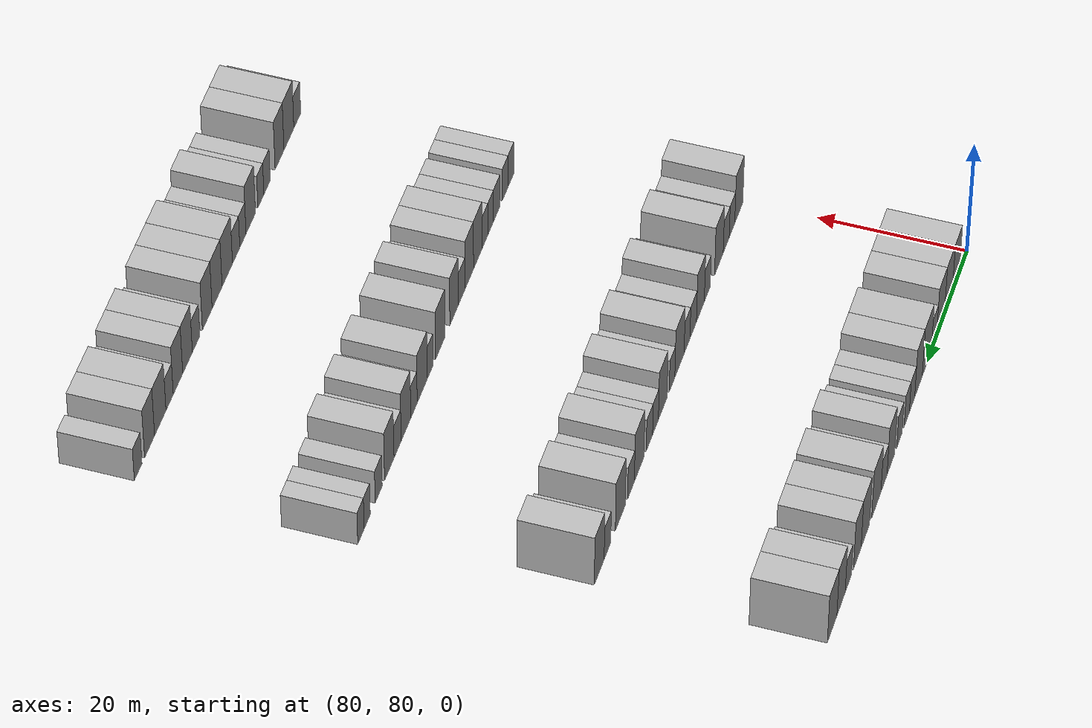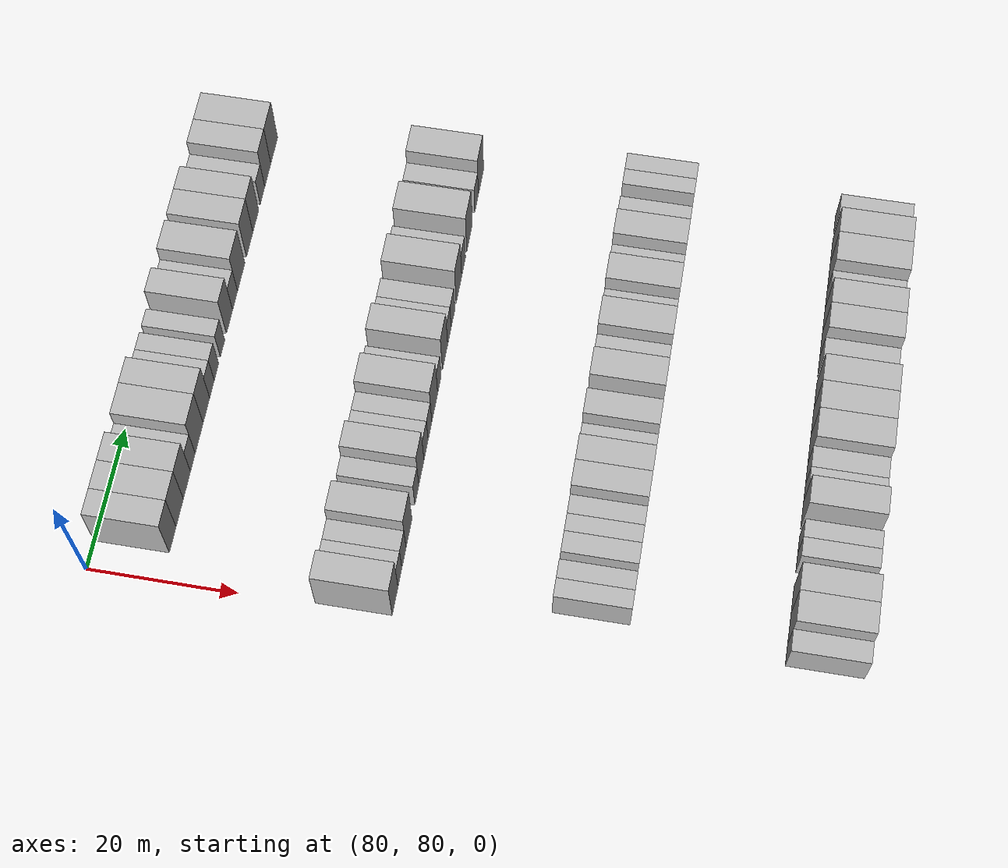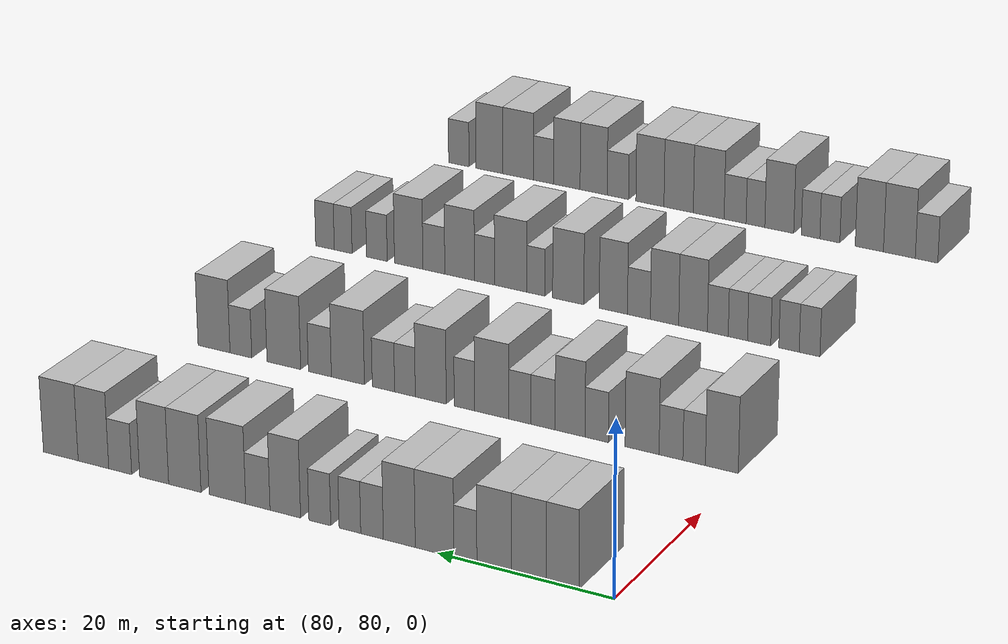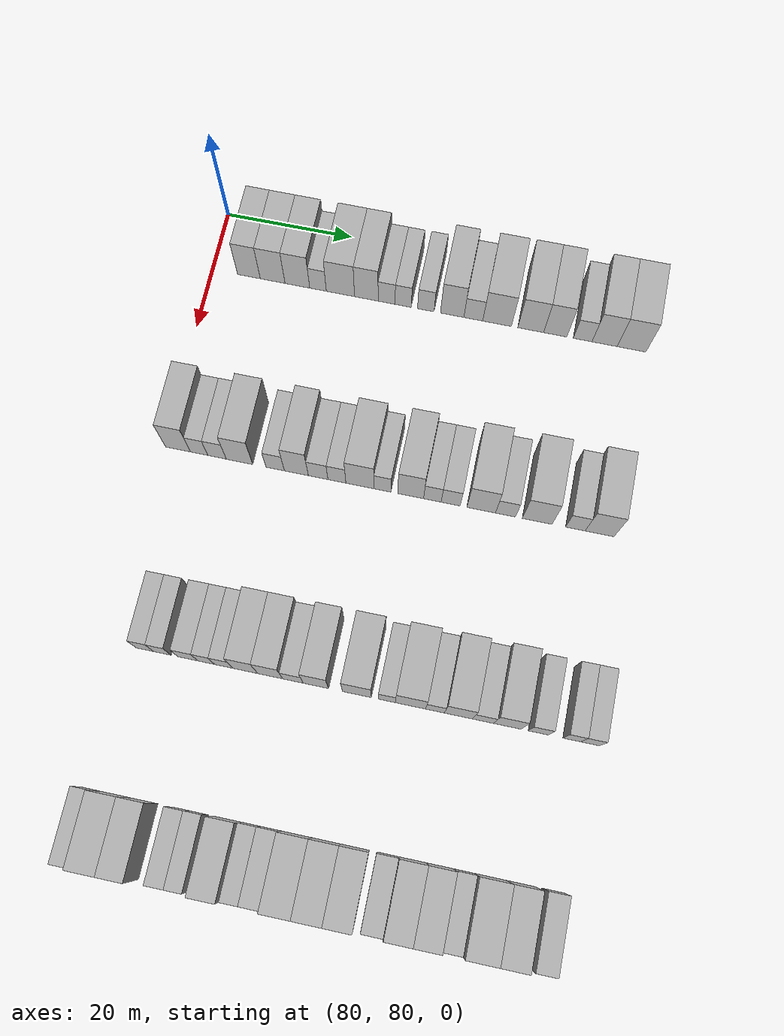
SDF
<sdf version="1.6">
 <world name="default">
  <model name="building_581">
   <static>1</static>
   <pose>85.0000 85.7623 0 0.000000 0.000000 0.000000</pose>
   <link name="link">
    <pose>0 0 4.50 0 0 0</pose>
    <collision name="collision"><geometry><box><size>10.0000 3.6317 9.0000</size></box></geometry></collision>
    <visual name="visual">
     <cast_shadows>0</cast_shadows>
     <geometry><box><size>10.0000 3.6317 9.0000</size></box></geometry>
     <material>
      <script>
       <uri>model://HANNAS_wall/materials/scripts</uri>
       <uri>model://HANNAS_wall/materials/textures</uri>
       <name>vrc/HANNAS_wall</name>
      </script>
     </material>
    </visual>
   </link>
  </model>
  <model name="building_582">
   <static>1</static>
   <pose>85.0000 89.5626 0 0.000000 0.000000 0.000000</pose>
   <link name="link">
    <pose>0 0 4.50 0 0 0</pose>
    <collision name="collision"><geometry><box><size>10.0000 3.9690 9.0000</size></box></geometry></collision>
    <visual name="visual">
     <cast_shadows>0</cast_shadows>
     <geometry><box><size>10.0000 3.9690 9.0000</size></box></geometry>
     <material>
      <script>
       <uri>model://HANNAS_wall/materials/scripts</uri>
       <uri>model://HANNAS_wall/materials/textures</uri>
       <name>vrc/HANNAS_wall</name>
      </script>
     </material>
    </visual>
   </link>
  </model>
  <model name="building_583">
   <static>1</static>
   <pose>85.0000 93.5191 0 0.000000 0.000000 0.000000</pose>
   <link name="link">
    <pose>0 0 4.50 0 0 0</pose>
    <collision name="collision"><geometry><box><size>10.0000 3.9439 9.0000</size></box></geometry></collision>
    <visual name="visual">
     <cast_shadows>0</cast_shadows>
     <geometry><box><size>10.0000 3.9439 9.0000</size></box></geometry>
     <material>
      <script>
       <uri>model://HANNAS_wall/materials/scripts</uri>
       <uri>model://HANNAS_wall/materials/textures</uri>
       <name>vrc/HANNAS_wall</name>
      </script>
     </material>
    </visual>
   </link>
  </model>
  <model name="building_584">
   <static>1</static>
   <pose>85.0000 96.8110 0 0.000000 0.000000 0.000000</pose>
   <link name="link">
    <pose>0 0 3.00 0 0 0</pose>
    <collision name="collision"><geometry><box><size>10.0000 2.6399 6.0000</size></box></geometry></collision>
    <visual name="visual">
     <cast_shadows>0</cast_shadows>
     <geometry><box><size>10.0000 2.6399 6.0000</size></box></geometry>
     <material>
      <script>
       <uri>model://HANNAS_wall/materials/scripts</uri>
       <uri>model://HANNAS_wall/materials/textures</uri>
       <name>vrc/HANNAS_wall</name>
      </script>
     </material>
    </visual>
   </link>
  </model>
  <model name="building_585">
   <static>1</static>
   <pose>85.0000 100.3733 0 0.000000 0.000000 0.000000</pose>
   <link name="link">
    <pose>0 0 4.50 0 0 0</pose>
    <collision name="collision"><geometry><box><size>10.0000 4.4847 9.0000</size></box></geometry></collision>
    <visual name="visual">
     <cast_shadows>0</cast_shadows>
     <geometry><box><size>10.0000 4.4847 9.0000</size></box></geometry>
     <material>
      <script>
       <uri>model://HANNAS_wall/materials/scripts</uri>
       <uri>model://HANNAS_wall/materials/textures</uri>
       <name>vrc/HANNAS_wall</name>
      </script>
     </material>
    </visual>
   </link>
  </model>
  <model name="building_586">
   <static>1</static>
   <pose>85.0000 104.4873 0 0.000000 0.000000 0.000000</pose>
   <link name="link">
    <pose>0 0 4.50 0 0 0</pose>
    <collision name="collision"><geometry><box><size>10.0000 3.7434 9.0000</size></box></geometry></collision>
    <visual name="visual">
     <cast_shadows>0</cast_shadows>
     <geometry><box><size>10.0000 3.7434 9.0000</size></box></geometry>
     <material>
      <script>
       <uri>model://HANNAS_wall/materials/scripts</uri>
       <uri>model://HANNAS_wall/materials/textures</uri>
       <name>vrc/HANNAS_wall</name>
      </script>
     </material>
    </visual>
   </link>
  </model>
  <model name="building_587">
   <static>1</static>
   <pose>85.0000 107.6906 0 0.000000 0.000000 0.000000</pose>
   <link name="link">
    <pose>0 0 3.00 0 0 0</pose>
    <collision name="collision"><geometry><box><size>10.0000 2.6631 6.0000</size></box></geometry></collision>
    <visual name="visual">
     <cast_shadows>0</cast_shadows>
     <geometry><box><size>10.0000 2.6631 6.0000</size></box></geometry>
     <material>
      <script>
       <uri>model://HANNAS_wall/materials/scripts</uri>
       <uri>model://HANNAS_wall/materials/textures</uri>
       <name>vrc/HANNAS_wall</name>
      </script>
     </material>
    </visual>
   </link>
  </model>
  <model name="building_588">
   <static>1</static>
   <pose>85.0000 110.3034 0 0.000000 0.000000 0.000000</pose>
   <link name="link">
    <pose>0 0 3.00 0 0 0</pose>
    <collision name="collision"><geometry><box><size>10.0000 2.5625 6.0000</size></box></geometry></collision>
    <visual name="visual">
     <cast_shadows>0</cast_shadows>
     <geometry><box><size>10.0000 2.5625 6.0000</size></box></geometry>
     <material>
      <script>
       <uri>model://HANNAS_wall/materials/scripts</uri>
       <uri>model://HANNAS_wall/materials/textures</uri>
       <name>vrc/HANNAS_wall</name>
      </script>
     </material>
    </visual>
   </link>
  </model>
  <model name="building_589">
   <static>1</static>
   <pose>85.0000 113.8896 0 0.000000 0.000000 0.000000</pose>
   <link name="link">
    <pose>0 0 3.00 0 0 0</pose>
    <collision name="collision"><geometry><box><size>10.0000 2.6100 6.0000</size></box></geometry></collision>
    <visual name="visual">
     <cast_shadows>0</cast_shadows>
     <geometry><box><size>10.0000 2.6100 6.0000</size></box></geometry>
     <material>
      <script>
       <uri>model://HANNAS_wall/materials/scripts</uri>
       <uri>model://HANNAS_wall/materials/textures</uri>
       <name>vrc/HANNAS_wall</name>
      </script>
     </material>
    </visual>
   </link>
  </model>
  <model name="building_590">
   <static>1</static>
   <pose>85.0000 118.0367 0 0.000000 0.000000 0.000000</pose>
   <link name="link">
    <pose>0 0 4.50 0 0 0</pose>
    <collision name="collision"><geometry><box><size>10.0000 3.6842 9.0000</size></box></geometry></collision>
    <visual name="visual">
     <cast_shadows>0</cast_shadows>
     <geometry><box><size>10.0000 3.6842 9.0000</size></box></geometry>
     <material>
      <script>
       <uri>model://HANNAS_wall/materials/scripts</uri>
       <uri>model://HANNAS_wall/materials/textures</uri>
       <name>vrc/HANNAS_wall</name>
      </script>
     </material>
    </visual>
   </link>
  </model>
  <model name="building_591">
   <static>1</static>
   <pose>85.0000 121.3583 0 0.000000 0.000000 0.000000</pose>
   <link name="link">
    <pose>0 0 3.00 0 0 0</pose>
    <collision name="collision"><geometry><box><size>10.0000 2.9589 6.0000</size></box></geometry></collision>
    <visual name="visual">
     <cast_shadows>0</cast_shadows>
     <geometry><box><size>10.0000 2.9589 6.0000</size></box></geometry>
     <material>
      <script>
       <uri>model://HANNAS_wall/materials/scripts</uri>
       <uri>model://HANNAS_wall/materials/textures</uri>
       <name>vrc/HANNAS_wall</name>
      </script>
     </material>
    </visual>
   </link>
  </model>
  <model name="building_592">
   <static>1</static>
   <pose>85.0000 125.0795 0 0.000000 0.000000 0.000000</pose>
   <link name="link">
    <pose>0 0 4.50 0 0 0</pose>
    <collision name="collision"><geometry><box><size>10.0000 4.4836 9.0000</size></box></geometry></collision>
    <visual name="visual">
     <cast_shadows>0</cast_shadows>
     <geometry><box><size>10.0000 4.4836 9.0000</size></box></geometry>
     <material>
      <script>
       <uri>model://HANNAS_wall/materials/scripts</uri>
       <uri>model://HANNAS_wall/materials/textures</uri>
       <name>vrc/HANNAS_wall</name>
      </script>
     </material>
    </visual>
   </link>
  </model>
  <model name="building_593">
   <static>1</static>
   <pose>85.0000 130.3272 0 0.000000 0.000000 0.000000</pose>
   <link name="link">
    <pose>0 0 4.50 0 0 0</pose>
    <collision name="collision"><geometry><box><size>10.0000 4.0117 9.0000</size></box></geometry></collision>
    <visual name="visual">
     <cast_shadows>0</cast_shadows>
     <geometry><box><size>10.0000 4.0117 9.0000</size></box></geometry>
     <material>
      <script>
       <uri>model://HANNAS_wall/materials/scripts</uri>
       <uri>model://HANNAS_wall/materials/textures</uri>
       <name>vrc/HANNAS_wall</name>
      </script>
     </material>
    </visual>
   </link>
  </model>
  <model name="building_594">
   <static>1</static>
   <pose>85.0000 134.1462 0 0.000000 0.000000 0.000000</pose>
   <link name="link">
    <pose>0 0 4.50 0 0 0</pose>
    <collision name="collision"><geometry><box><size>10.0000 3.6263 9.0000</size></box></geometry></collision>
    <visual name="visual">
     <cast_shadows>0</cast_shadows>
     <geometry><box><size>10.0000 3.6263 9.0000</size></box></geometry>
     <material>
      <script>
       <uri>model://HANNAS_wall/materials/scripts</uri>
       <uri>model://HANNAS_wall/materials/textures</uri>
       <name>vrc/HANNAS_wall</name>
      </script>
     </material>
    </visual>
   </link>
  </model>
  <model name="building_595">
   <static>1</static>
   <pose>85.0000 138.4075 0 0.000000 0.000000 0.000000</pose>
   <link name="link">
    <pose>0 0 3.00 0 0 0</pose>
    <collision name="collision"><geometry><box><size>10.0000 2.8963 6.0000</size></box></geometry></collision>
    <visual name="visual">
     <cast_shadows>0</cast_shadows>
     <geometry><box><size>10.0000 2.8963 6.0000</size></box></geometry>
     <material>
      <script>
       <uri>model://HANNAS_wall/materials/scripts</uri>
       <uri>model://HANNAS_wall/materials/textures</uri>
       <name>vrc/HANNAS_wall</name>
      </script>
     </material>
    </visual>
   </link>
  </model>
  <model name="building_596">
   <static>1</static>
   <pose>85.0000 141.7978 0 0.000000 0.000000 0.000000</pose>
   <link name="link">
    <pose>0 0 4.50 0 0 0</pose>
    <collision name="collision"><geometry><box><size>10.0000 3.8843 9.0000</size></box></geometry></collision>
    <visual name="visual">
     <cast_shadows>0</cast_shadows>
     <geometry><box><size>10.0000 3.8843 9.0000</size></box></geometry>
     <material>
      <script>
       <uri>model://HANNAS_wall/materials/scripts</uri>
       <uri>model://HANNAS_wall/materials/textures</uri>
       <name>vrc/HANNAS_wall</name>
      </script>
     </material>
    </visual>
   </link>
  </model>
  <model name="building_597">
   <static>1</static>
   <pose>85.0000 145.9642 0 0.000000 0.000000 0.000000</pose>
   <link name="link">
    <pose>0 0 4.50 0 0 0</pose>
    <collision name="collision"><geometry><box><size>10.0000 4.4486 9.0000</size></box></geometry></collision>
    <visual name="visual">
     <cast_shadows>0</cast_shadows>
     <geometry><box><size>10.0000 4.4486 9.0000</size></box></geometry>
     <material>
      <script>
       <uri>model://HANNAS_wall/materials/scripts</uri>
       <uri>model://HANNAS_wall/materials/textures</uri>
       <name>vrc/HANNAS_wall</name>
      </script>
     </material>
    </visual>
   </link>
  </model>
  <model name="building_810">
   <static>1</static>
   <pose>115.0000 82.2868 0 0.000000 0.000000 0.000000</pose>
   <link name="link">
    <pose>0 0 4.50 0 0 0</pose>
    <collision name="collision"><geometry><box><size>10.0000 3.8354 9.0000</size></box></geometry></collision>
    <visual name="visual">
     <cast_shadows>0</cast_shadows>
     <geometry><box><size>10.0000 3.8354 9.0000</size></box></geometry>
     <material>
      <script>
       <uri>model://HANNAS_wall/materials/scripts</uri>
       <uri>model://HANNAS_wall/materials/textures</uri>
       <name>vrc/HANNAS_wall</name>
      </script>
     </material>
    </visual>
   </link>
  </model>
  <model name="building_811">
   <static>1</static>
   <pose>115.0000 85.5262 0 0.000000 0.000000 0.000000</pose>
   <link name="link">
    <pose>0 0 3.00 0 0 0</pose>
    <collision name="collision"><geometry><box><size>10.0000 2.6434 6.0000</size></box></geometry></collision>
    <visual name="visual">
     <cast_shadows>0</cast_shadows>
     <geometry><box><size>10.0000 2.6434 6.0000</size></box></geometry>
     <material>
      <script>
       <uri>model://HANNAS_wall/materials/scripts</uri>
       <uri>model://HANNAS_wall/materials/textures</uri>
       <name>vrc/HANNAS_wall</name>
      </script>
     </material>
    </visual>
   </link>
  </model>
  <model name="building_812">
   <static>1</static>
   <pose>115.0000 88.2572 0 0.000000 0.000000 0.000000</pose>
   <link name="link">
    <pose>0 0 3.00 0 0 0</pose>
    <collision name="collision"><geometry><box><size>10.0000 2.8187 6.0000</size></box></geometry></collision>
    <visual name="visual">
     <cast_shadows>0</cast_shadows>
     <geometry><box><size>10.0000 2.8187 6.0000</size></box></geometry>
     <material>
      <script>
       <uri>model://HANNAS_wall/materials/scripts</uri>
       <uri>model://HANNAS_wall/materials/textures</uri>
       <name>vrc/HANNAS_wall</name>
      </script>
     </material>
    </visual>
   </link>
  </model>
  <model name="building_813">
   <static>1</static>
   <pose>115.0000 91.6901 0 0.000000 0.000000 0.000000</pose>
   <link name="link">
    <pose>0 0 4.50 0 0 0</pose>
    <collision name="collision"><geometry><box><size>10.0000 4.0471 9.0000</size></box></geometry></collision>
    <visual name="visual">
     <cast_shadows>0</cast_shadows>
     <geometry><box><size>10.0000 4.0471 9.0000</size></box></geometry>
     <material>
      <script>
       <uri>model://HANNAS_wall/materials/scripts</uri>
       <uri>model://HANNAS_wall/materials/textures</uri>
       <name>vrc/HANNAS_wall</name>
      </script>
     </material>
    </visual>
   </link>
  </model>
  <model name="building_814">
   <static>1</static>
   <pose>115.0000 97.1139 0 0.000000 0.000000 0.000000</pose>
   <link name="link">
    <pose>0 0 3.00 0 0 0</pose>
    <collision name="collision"><geometry><box><size>10.0000 2.8004 6.0000</size></box></geometry></collision>
    <visual name="visual">
     <cast_shadows>0</cast_shadows>
     <geometry><box><size>10.0000 2.8004 6.0000</size></box></geometry>
     <material>
      <script>
       <uri>model://HANNAS_wall/materials/scripts</uri>
       <uri>model://HANNAS_wall/materials/textures</uri>
       <name>vrc/HANNAS_wall</name>
      </script>
     </material>
    </visual>
   </link>
  </model>
  <model name="building_815">
   <static>1</static>
   <pose>115.0000 100.3317 0 0.000000 0.000000 0.000000</pose>
   <link name="link">
    <pose>0 0 4.50 0 0 0</pose>
    <collision name="collision"><geometry><box><size>10.0000 3.6353 9.0000</size></box></geometry></collision>
    <visual name="visual">
     <cast_shadows>0</cast_shadows>
     <geometry><box><size>10.0000 3.6353 9.0000</size></box></geometry>
     <material>
      <script>
       <uri>model://HANNAS_wall/materials/scripts</uri>
       <uri>model://HANNAS_wall/materials/textures</uri>
       <name>vrc/HANNAS_wall</name>
      </script>
     </material>
    </visual>
   </link>
  </model>
  <model name="building_816">
   <static>1</static>
   <pose>115.0000 103.6343 0 0.000000 0.000000 0.000000</pose>
   <link name="link">
    <pose>0 0 3.00 0 0 0</pose>
    <collision name="collision"><geometry><box><size>10.0000 2.9698 6.0000</size></box></geometry></collision>
    <visual name="visual">
     <cast_shadows>0</cast_shadows>
     <geometry><box><size>10.0000 2.9698 6.0000</size></box></geometry>
     <material>
      <script>
       <uri>model://HANNAS_wall/materials/scripts</uri>
       <uri>model://HANNAS_wall/materials/textures</uri>
       <name>vrc/HANNAS_wall</name>
      </script>
     </material>
    </visual>
   </link>
  </model>
  <model name="building_817">
   <static>1</static>
   <pose>115.0000 106.4729 0 0.000000 0.000000 0.000000</pose>
   <link name="link">
    <pose>0 0 3.00 0 0 0</pose>
    <collision name="collision"><geometry><box><size>10.0000 2.7075 6.0000</size></box></geometry></collision>
    <visual name="visual">
     <cast_shadows>0</cast_shadows>
     <geometry><box><size>10.0000 2.7075 6.0000</size></box></geometry>
     <material>
      <script>
       <uri>model://HANNAS_wall/materials/scripts</uri>
       <uri>model://HANNAS_wall/materials/textures</uri>
       <name>vrc/HANNAS_wall</name>
      </script>
     </material>
    </visual>
   </link>
  </model>
  <model name="building_818">
   <static>1</static>
   <pose>115.0000 109.9469 0 0.000000 0.000000 0.000000</pose>
   <link name="link">
    <pose>0 0 4.50 0 0 0</pose>
    <collision name="collision"><geometry><box><size>10.0000 4.2403 9.0000</size></box></geometry></collision>
    <visual name="visual">
     <cast_shadows>0</cast_shadows>
     <geometry><box><size>10.0000 4.2403 9.0000</size></box></geometry>
     <material>
      <script>
       <uri>model://HANNAS_wall/materials/scripts</uri>
       <uri>model://HANNAS_wall/materials/textures</uri>
       <name>vrc/HANNAS_wall</name>
      </script>
     </material>
    </visual>
   </link>
  </model>
  <model name="building_819">
   <static>1</static>
   <pose>115.0000 113.3374 0 0.000000 0.000000 0.000000</pose>
   <link name="link">
    <pose>0 0 3.00 0 0 0</pose>
    <collision name="collision"><geometry><box><size>10.0000 2.5407 6.0000</size></box></geometry></collision>
    <visual name="visual">
     <cast_shadows>0</cast_shadows>
     <geometry><box><size>10.0000 2.5407 6.0000</size></box></geometry>
     <material>
      <script>
       <uri>model://HANNAS_wall/materials/scripts</uri>
       <uri>model://HANNAS_wall/materials/textures</uri>
       <name>vrc/HANNAS_wall</name>
      </script>
     </material>
    </visual>
   </link>
  </model>
  <model name="building_820">
   <static>1</static>
   <pose>115.0000 117.5552 0 0.000000 0.000000 0.000000</pose>
   <link name="link">
    <pose>0 0 4.50 0 0 0</pose>
    <collision name="collision"><geometry><box><size>10.0000 3.8949 9.0000</size></box></geometry></collision>
    <visual name="visual">
     <cast_shadows>0</cast_shadows>
     <geometry><box><size>10.0000 3.8949 9.0000</size></box></geometry>
     <material>
      <script>
       <uri>model://HANNAS_wall/materials/scripts</uri>
       <uri>model://HANNAS_wall/materials/textures</uri>
       <name>vrc/HANNAS_wall</name>
      </script>
     </material>
    </visual>
   </link>
  </model>
  <model name="building_821">
   <static>1</static>
   <pose>115.0000 120.8131 0 0.000000 0.000000 0.000000</pose>
   <link name="link">
    <pose>0 0 3.00 0 0 0</pose>
    <collision name="collision"><geometry><box><size>10.0000 2.6207 6.0000</size></box></geometry></collision>
    <visual name="visual">
     <cast_shadows>0</cast_shadows>
     <geometry><box><size>10.0000 2.6207 6.0000</size></box></geometry>
     <material>
      <script>
       <uri>model://HANNAS_wall/materials/scripts</uri>
       <uri>model://HANNAS_wall/materials/textures</uri>
       <name>vrc/HANNAS_wall</name>
      </script>
     </material>
    </visual>
   </link>
  </model>
  <model name="building_822">
   <static>1</static>
   <pose>115.0000 123.5461 0 0.000000 0.000000 0.000000</pose>
   <link name="link">
    <pose>0 0 3.00 0 0 0</pose>
    <collision name="collision"><geometry><box><size>10.0000 2.8453 6.0000</size></box></geometry></collision>
    <visual name="visual">
     <cast_shadows>0</cast_shadows>
     <geometry><box><size>10.0000 2.8453 6.0000</size></box></geometry>
     <material>
      <script>
       <uri>model://HANNAS_wall/materials/scripts</uri>
       <uri>model://HANNAS_wall/materials/textures</uri>
       <name>vrc/HANNAS_wall</name>
      </script>
     </material>
    </visual>
   </link>
  </model>
  <model name="building_823">
   <static>1</static>
   <pose>115.0000 128.0946 0 0.000000 0.000000 0.000000</pose>
   <link name="link">
    <pose>0 0 4.50 0 0 0</pose>
    <collision name="collision"><geometry><box><size>10.0000 4.2518 9.0000</size></box></geometry></collision>
    <visual name="visual">
     <cast_shadows>0</cast_shadows>
     <geometry><box><size>10.0000 4.2518 9.0000</size></box></geometry>
     <material>
      <script>
       <uri>model://HANNAS_wall/materials/scripts</uri>
       <uri>model://HANNAS_wall/materials/textures</uri>
       <name>vrc/HANNAS_wall</name>
      </script>
     </material>
    </visual>
   </link>
  </model>
  <model name="building_824">
   <static>1</static>
   <pose>115.0000 131.7114 0 0.000000 0.000000 0.000000</pose>
   <link name="link">
    <pose>0 0 3.00 0 0 0</pose>
    <collision name="collision"><geometry><box><size>10.0000 2.9817 6.0000</size></box></geometry></collision>
    <visual name="visual">
     <cast_shadows>0</cast_shadows>
     <geometry><box><size>10.0000 2.9817 6.0000</size></box></geometry>
     <material>
      <script>
       <uri>model://HANNAS_wall/materials/scripts</uri>
       <uri>model://HANNAS_wall/materials/textures</uri>
       <name>vrc/HANNAS_wall</name>
      </script>
     </material>
    </visual>
   </link>
  </model>
  <model name="building_825">
   <static>1</static>
   <pose>115.0000 136.4063 0 0.000000 0.000000 0.000000</pose>
   <link name="link">
    <pose>0 0 4.50 0 0 0</pose>
    <collision name="collision"><geometry><box><size>10.0000 4.4081 9.0000</size></box></geometry></collision>
    <visual name="visual">
     <cast_shadows>0</cast_shadows>
     <geometry><box><size>10.0000 4.4081 9.0000</size></box></geometry>
     <material>
      <script>
       <uri>model://HANNAS_wall/materials/scripts</uri>
       <uri>model://HANNAS_wall/materials/textures</uri>
       <name>vrc/HANNAS_wall</name>
      </script>
     </material>
    </visual>
   </link>
  </model>
  <model name="building_826">
   <static>1</static>
   <pose>115.0000 142.0508 0 0.000000 0.000000 0.000000</pose>
   <link name="link">
    <pose>0 0 3.00 0 0 0</pose>
    <collision name="collision"><geometry><box><size>10.0000 2.8809 6.0000</size></box></geometry></collision>
    <visual name="visual">
     <cast_shadows>0</cast_shadows>
     <geometry><box><size>10.0000 2.8809 6.0000</size></box></geometry>
     <material>
      <script>
       <uri>model://HANNAS_wall/materials/scripts</uri>
       <uri>model://HANNAS_wall/materials/textures</uri>
       <name>vrc/HANNAS_wall</name>
      </script>
     </material>
    </visual>
   </link>
  </model>
  <model name="building_827">
   <static>1</static>
   <pose>115.0000 145.6184 0 0.000000 0.000000 0.000000</pose>
   <link name="link">
    <pose>0 0 4.50 0 0 0</pose>
    <collision name="collision"><geometry><box><size>10.0000 4.2543 9.0000</size></box></geometry></collision>
    <visual name="visual">
     <cast_shadows>0</cast_shadows>
     <geometry><box><size>10.0000 4.2543 9.0000</size></box></geometry>
     <material>
      <script>
       <uri>model://HANNAS_wall/materials/scripts</uri>
       <uri>model://HANNAS_wall/materials/textures</uri>
       <name>vrc/HANNAS_wall</name>
      </script>
     </material>
    </visual>
   </link>
  </model>
  <model name="building_1046">
   <static>1</static>
   <pose>145.0000 85.3965 0 0.000000 0.000000 0.000000</pose>
   <link name="link">
    <pose>0 0 3.00 0 0 0</pose>
    <collision name="collision"><geometry><box><size>10.0000 2.5529 6.0000</size></box></geometry></collision>
    <visual name="visual">
     <cast_shadows>0</cast_shadows>
     <geometry><box><size>10.0000 2.5529 6.0000</size></box></geometry>
     <material>
      <script>
       <uri>model://HANNAS_wall/materials/scripts</uri>
       <uri>model://HANNAS_wall/materials/textures</uri>
       <name>vrc/HANNAS_wall</name>
      </script>
     </material>
    </visual>
   </link>
  </model>
  <model name="building_1047">
   <static>1</static>
   <pose>145.0000 87.9334 0 0.000000 0.000000 0.000000</pose>
   <link name="link">
    <pose>0 0 3.00 0 0 0</pose>
    <collision name="collision"><geometry><box><size>10.0000 2.5209 6.0000</size></box></geometry></collision>
    <visual name="visual">
     <cast_shadows>0</cast_shadows>
     <geometry><box><size>10.0000 2.5209 6.0000</size></box></geometry>
     <material>
      <script>
       <uri>model://HANNAS_wall/materials/scripts</uri>
       <uri>model://HANNAS_wall/materials/textures</uri>
       <name>vrc/HANNAS_wall</name>
      </script>
     </material>
    </visual>
   </link>
  </model>
  <model name="building_1048">
   <static>1</static>
   <pose>145.0000 91.6398 0 0.000000 0.000000 0.000000</pose>
   <link name="link">
    <pose>0 0 3.00 0 0 0</pose>
    <collision name="collision"><geometry><box><size>10.0000 2.8918 6.0000</size></box></geometry></collision>
    <visual name="visual">
     <cast_shadows>0</cast_shadows>
     <geometry><box><size>10.0000 2.8918 6.0000</size></box></geometry>
     <material>
      <script>
       <uri>model://HANNAS_wall/materials/scripts</uri>
       <uri>model://HANNAS_wall/materials/textures</uri>
       <name>vrc/HANNAS_wall</name>
      </script>
     </material>
    </visual>
   </link>
  </model>
  <model name="building_1049">
   <static>1</static>
   <pose>145.0000 94.2935 0 0.000000 0.000000 0.000000</pose>
   <link name="link">
    <pose>0 0 3.00 0 0 0</pose>
    <collision name="collision"><geometry><box><size>10.0000 2.4157 6.0000</size></box></geometry></collision>
    <visual name="visual">
     <cast_shadows>0</cast_shadows>
     <geometry><box><size>10.0000 2.4157 6.0000</size></box></geometry>
     <material>
      <script>
       <uri>model://HANNAS_wall/materials/scripts</uri>
       <uri>model://HANNAS_wall/materials/textures</uri>
       <name>vrc/HANNAS_wall</name>
      </script>
     </material>
    </visual>
   </link>
  </model>
  <model name="building_1050">
   <static>1</static>
   <pose>145.0000 96.8104 0 0.000000 0.000000 0.000000</pose>
   <link name="link">
    <pose>0 0 3.00 0 0 0</pose>
    <collision name="collision"><geometry><box><size>10.0000 2.6181 6.0000</size></box></geometry></collision>
    <visual name="visual">
     <cast_shadows>0</cast_shadows>
     <geometry><box><size>10.0000 2.6181 6.0000</size></box></geometry>
     <material>
      <script>
       <uri>model://HANNAS_wall/materials/scripts</uri>
       <uri>model://HANNAS_wall/materials/textures</uri>
       <name>vrc/HANNAS_wall</name>
      </script>
     </material>
    </visual>
   </link>
  </model>
  <model name="building_1051">
   <static>1</static>
   <pose>145.0000 99.9381 0 0.000000 0.000000 0.000000</pose>
   <link name="link">
    <pose>0 0 4.50 0 0 0</pose>
    <collision name="collision"><geometry><box><size>10.0000 3.6372 9.0000</size></box></geometry></collision>
    <visual name="visual">
     <cast_shadows>0</cast_shadows>
     <geometry><box><size>10.0000 3.6372 9.0000</size></box></geometry>
     <material>
      <script>
       <uri>model://HANNAS_wall/materials/scripts</uri>
       <uri>model://HANNAS_wall/materials/textures</uri>
       <name>vrc/HANNAS_wall</name>
      </script>
     </material>
    </visual>
   </link>
  </model>
  <model name="building_1052">
   <static>1</static>
   <pose>145.0000 103.5609 0 0.000000 0.000000 0.000000</pose>
   <link name="link">
    <pose>0 0 4.50 0 0 0</pose>
    <collision name="collision"><geometry><box><size>10.0000 3.6083 9.0000</size></box></geometry></collision>
    <visual name="visual">
     <cast_shadows>0</cast_shadows>
     <geometry><box><size>10.0000 3.6083 9.0000</size></box></geometry>
     <material>
      <script>
       <uri>model://HANNAS_wall/materials/scripts</uri>
       <uri>model://HANNAS_wall/materials/textures</uri>
       <name>vrc/HANNAS_wall</name>
      </script>
     </material>
    </visual>
   </link>
  </model>
  <model name="building_1053">
   <static>1</static>
   <pose>145.0000 106.8397 0 0.000000 0.000000 0.000000</pose>
   <link name="link">
    <pose>0 0 3.00 0 0 0</pose>
    <collision name="collision"><geometry><box><size>10.0000 2.9495 6.0000</size></box></geometry></collision>
    <visual name="visual">
     <cast_shadows>0</cast_shadows>
     <geometry><box><size>10.0000 2.9495 6.0000</size></box></geometry>
     <material>
      <script>
       <uri>model://HANNAS_wall/materials/scripts</uri>
       <uri>model://HANNAS_wall/materials/textures</uri>
       <name>vrc/HANNAS_wall</name>
      </script>
     </material>
    </visual>
   </link>
  </model>
  <model name="building_1054">
   <static>1</static>
   <pose>145.0000 110.1320 0 0.000000 0.000000 0.000000</pose>
   <link name="link">
    <pose>0 0 4.50 0 0 0</pose>
    <collision name="collision"><geometry><box><size>10.0000 3.6350 9.0000</size></box></geometry></collision>
    <visual name="visual">
     <cast_shadows>0</cast_shadows>
     <geometry><box><size>10.0000 3.6350 9.0000</size></box></geometry>
     <material>
      <script>
       <uri>model://HANNAS_wall/materials/scripts</uri>
       <uri>model://HANNAS_wall/materials/textures</uri>
       <name>vrc/HANNAS_wall</name>
      </script>
     </material>
    </visual>
   </link>
  </model>
  <model name="building_1055">
   <static>1</static>
   <pose>145.0000 115.9954 0 0.000000 0.000000 0.000000</pose>
   <link name="link">
    <pose>0 0 4.50 0 0 0</pose>
    <collision name="collision"><geometry><box><size>10.0000 4.0918 9.0000</size></box></geometry></collision>
    <visual name="visual">
     <cast_shadows>0</cast_shadows>
     <geometry><box><size>10.0000 4.0918 9.0000</size></box></geometry>
     <material>
      <script>
       <uri>model://HANNAS_wall/materials/scripts</uri>
       <uri>model://HANNAS_wall/materials/textures</uri>
       <name>vrc/HANNAS_wall</name>
      </script>
     </material>
    </visual>
   </link>
  </model>
  <model name="building_1056">
   <static>1</static>
   <pose>145.0000 120.2458 0 0.000000 0.000000 0.000000</pose>
   <link name="link">
    <pose>0 0 3.00 0 0 0</pose>
    <collision name="collision"><geometry><box><size>10.0000 2.4089 6.0000</size></box></geometry></collision>
    <visual name="visual">
     <cast_shadows>0</cast_shadows>
     <geometry><box><size>10.0000 2.4089 6.0000</size></box></geometry>
     <material>
      <script>
       <uri>model://HANNAS_wall/materials/scripts</uri>
       <uri>model://HANNAS_wall/materials/textures</uri>
       <name>vrc/HANNAS_wall</name>
      </script>
     </material>
    </visual>
   </link>
  </model>
  <model name="building_1057">
   <static>1</static>
   <pose>145.0000 123.5866 0 0.000000 0.000000 0.000000</pose>
   <link name="link">
    <pose>0 0 4.50 0 0 0</pose>
    <collision name="collision"><geometry><box><size>10.0000 4.2728 9.0000</size></box></geometry></collision>
    <visual name="visual">
     <cast_shadows>0</cast_shadows>
     <geometry><box><size>10.0000 4.2728 9.0000</size></box></geometry>
     <material>
      <script>
       <uri>model://HANNAS_wall/materials/scripts</uri>
       <uri>model://HANNAS_wall/materials/textures</uri>
       <name>vrc/HANNAS_wall</name>
      </script>
     </material>
    </visual>
   </link>
  </model>
  <model name="building_1058">
   <static>1</static>
   <pose>145.0000 127.0610 0 0.000000 0.000000 0.000000</pose>
   <link name="link">
    <pose>0 0 3.00 0 0 0</pose>
    <collision name="collision"><geometry><box><size>10.0000 2.6759 6.0000</size></box></geometry></collision>
    <visual name="visual">
     <cast_shadows>0</cast_shadows>
     <geometry><box><size>10.0000 2.6759 6.0000</size></box></geometry>
     <material>
      <script>
       <uri>model://HANNAS_wall/materials/scripts</uri>
       <uri>model://HANNAS_wall/materials/textures</uri>
       <name>vrc/HANNAS_wall</name>
      </script>
     </material>
    </visual>
   </link>
  </model>
  <model name="building_1059">
   <static>1</static>
   <pose>145.0000 130.3931 0 0.000000 0.000000 0.000000</pose>
   <link name="link">
    <pose>0 0 4.50 0 0 0</pose>
    <collision name="collision"><geometry><box><size>10.0000 3.9883 9.0000</size></box></geometry></collision>
    <visual name="visual">
     <cast_shadows>0</cast_shadows>
     <geometry><box><size>10.0000 3.9883 9.0000</size></box></geometry>
     <material>
      <script>
       <uri>model://HANNAS_wall/materials/scripts</uri>
       <uri>model://HANNAS_wall/materials/textures</uri>
       <name>vrc/HANNAS_wall</name>
      </script>
     </material>
    </visual>
   </link>
  </model>
  <model name="building_1060">
   <static>1</static>
   <pose>145.0000 133.8688 0 0.000000 0.000000 0.000000</pose>
   <link name="link">
    <pose>0 0 3.00 0 0 0</pose>
    <collision name="collision"><geometry><box><size>10.0000 2.9632 6.0000</size></box></geometry></collision>
    <visual name="visual">
     <cast_shadows>0</cast_shadows>
     <geometry><box><size>10.0000 2.9632 6.0000</size></box></geometry>
     <material>
      <script>
       <uri>model://HANNAS_wall/materials/scripts</uri>
       <uri>model://HANNAS_wall/materials/textures</uri>
       <name>vrc/HANNAS_wall</name>
      </script>
     </material>
    </visual>
   </link>
  </model>
  <model name="building_1061">
   <static>1</static>
   <pose>145.0000 137.2902 0 0.000000 0.000000 0.000000</pose>
   <link name="link">
    <pose>0 0 4.50 0 0 0</pose>
    <collision name="collision"><geometry><box><size>10.0000 3.8795 9.0000</size></box></geometry></collision>
    <visual name="visual">
     <cast_shadows>0</cast_shadows>
     <geometry><box><size>10.0000 3.8795 9.0000</size></box></geometry>
     <material>
      <script>
       <uri>model://HANNAS_wall/materials/scripts</uri>
       <uri>model://HANNAS_wall/materials/textures</uri>
       <name>vrc/HANNAS_wall</name>
      </script>
     </material>
    </visual>
   </link>
  </model>
  <model name="building_1062">
   <static>1</static>
   <pose>145.0000 141.6479 0 0.000000 0.000000 0.000000</pose>
   <link name="link">
    <pose>0 0 3.00 0 0 0</pose>
    <collision name="collision"><geometry><box><size>10.0000 2.8359 6.0000</size></box></geometry></collision>
    <visual name="visual">
     <cast_shadows>0</cast_shadows>
     <geometry><box><size>10.0000 2.8359 6.0000</size></box></geometry>
     <material>
      <script>
       <uri>model://HANNAS_wall/materials/scripts</uri>
       <uri>model://HANNAS_wall/materials/textures</uri>
       <name>vrc/HANNAS_wall</name>
      </script>
     </material>
    </visual>
   </link>
  </model>
  <model name="building_1063">
   <static>1</static>
   <pose>145.0000 146.2998 0 0.000000 0.000000 0.000000</pose>
   <link name="link">
    <pose>0 0 3.00 0 0 0</pose>
    <collision name="collision"><geometry><box><size>10.0000 2.4678 6.0000</size></box></geometry></collision>
    <visual name="visual">
     <cast_shadows>0</cast_shadows>
     <geometry><box><size>10.0000 2.4678 6.0000</size></box></geometry>
     <material>
      <script>
       <uri>model://HANNAS_wall/materials/scripts</uri>
       <uri>model://HANNAS_wall/materials/textures</uri>
       <name>vrc/HANNAS_wall</name>
      </script>
     </material>
    </visual>
   </link>
  </model>
  <model name="building_1064">
   <static>1</static>
   <pose>145.0000 148.8285 0 0.000000 0.000000 0.000000</pose>
   <link name="link">
    <pose>0 0 3.00 0 0 0</pose>
    <collision name="collision"><geometry><box><size>10.0000 2.5896 6.0000</size></box></geometry></collision>
    <visual name="visual">
     <cast_shadows>0</cast_shadows>
     <geometry><box><size>10.0000 2.5896 6.0000</size></box></geometry>
     <material>
      <script>
       <uri>model://HANNAS_wall/materials/scripts</uri>
       <uri>model://HANNAS_wall/materials/textures</uri>
       <name>vrc/HANNAS_wall</name>
      </script>
     </material>
    </visual>
   </link>
  </model>
  <model name="building_1271">
   <static>1</static>
   <pose>175.0000 83.4463 0 0.000000 0.000000 0.000000</pose>
   <link name="link">
    <pose>0 0 3.00 0 0 0</pose>
    <collision name="collision"><geometry><box><size>10.0000 2.8828 6.0000</size></box></geometry></collision>
    <visual name="visual">
     <cast_shadows>0</cast_shadows>
     <geometry><box><size>10.0000 2.8828 6.0000</size></box></geometry>
     <material>
      <script>
       <uri>model://HANNAS_wall/materials/scripts</uri>
       <uri>model://HANNAS_wall/materials/textures</uri>
       <name>vrc/HANNAS_wall</name>
      </script>
     </material>
    </visual>
   </link>
  </model>
  <model name="building_1272">
   <static>1</static>
   <pose>175.0000 86.9408 0 0.000000 0.000000 0.000000</pose>
   <link name="link">
    <pose>0 0 4.50 0 0 0</pose>
    <collision name="collision"><geometry><box><size>10.0000 4.1062 9.0000</size></box></geometry></collision>
    <visual name="visual">
     <cast_shadows>0</cast_shadows>
     <geometry><box><size>10.0000 4.1062 9.0000</size></box></geometry>
     <material>
      <script>
       <uri>model://HANNAS_wall/materials/scripts</uri>
       <uri>model://HANNAS_wall/materials/textures</uri>
       <name>vrc/HANNAS_wall</name>
      </script>
     </material>
    </visual>
   </link>
  </model>
  <model name="building_1273">
   <static>1</static>
   <pose>175.0000 90.8269 0 0.000000 0.000000 0.000000</pose>
   <link name="link">
    <pose>0 0 4.50 0 0 0</pose>
    <collision name="collision"><geometry><box><size>10.0000 3.6660 9.0000</size></box></geometry></collision>
    <visual name="visual">
     <cast_shadows>0</cast_shadows>
     <geometry><box><size>10.0000 3.6660 9.0000</size></box></geometry>
     <material>
      <script>
       <uri>model://HANNAS_wall/materials/scripts</uri>
       <uri>model://HANNAS_wall/materials/textures</uri>
       <name>vrc/HANNAS_wall</name>
      </script>
     </material>
    </visual>
   </link>
  </model>
  <model name="building_1274">
   <static>1</static>
   <pose>175.0000 95.9691 0 0.000000 0.000000 0.000000</pose>
   <link name="link">
    <pose>0 0 3.00 0 0 0</pose>
    <collision name="collision"><geometry><box><size>10.0000 2.6184 6.0000</size></box></geometry></collision>
    <visual name="visual">
     <cast_shadows>0</cast_shadows>
     <geometry><box><size>10.0000 2.6184 6.0000</size></box></geometry>
     <material>
      <script>
       <uri>model://HANNAS_wall/materials/scripts</uri>
       <uri>model://HANNAS_wall/materials/textures</uri>
       <name>vrc/HANNAS_wall</name>
      </script>
     </material>
    </visual>
   </link>
  </model>
  <model name="building_1275">
   <static>1</static>
   <pose>175.0000 98.5053 0 0.000000 0.000000 0.000000</pose>
   <link name="link">
    <pose>0 0 3.00 0 0 0</pose>
    <collision name="collision"><geometry><box><size>10.0000 2.4541 6.0000</size></box></geometry></collision>
    <visual name="visual">
     <cast_shadows>0</cast_shadows>
     <geometry><box><size>10.0000 2.4541 6.0000</size></box></geometry>
     <material>
      <script>
       <uri>model://HANNAS_wall/materials/scripts</uri>
       <uri>model://HANNAS_wall/materials/textures</uri>
       <name>vrc/HANNAS_wall</name>
      </script>
     </material>
    </visual>
   </link>
  </model>
  <model name="building_1276">
   <static>1</static>
   <pose>175.0000 102.6502 0 0.000000 0.000000 0.000000</pose>
   <link name="link">
    <pose>0 0 4.50 0 0 0</pose>
    <collision name="collision"><geometry><box><size>10.0000 3.8356 9.0000</size></box></geometry></collision>
    <visual name="visual">
     <cast_shadows>0</cast_shadows>
     <geometry><box><size>10.0000 3.8356 9.0000</size></box></geometry>
     <material>
      <script>
       <uri>model://HANNAS_wall/materials/scripts</uri>
       <uri>model://HANNAS_wall/materials/textures</uri>
       <name>vrc/HANNAS_wall</name>
      </script>
     </material>
    </visual>
   </link>
  </model>
  <model name="building_1277">
   <static>1</static>
   <pose>175.0000 105.8193 0 0.000000 0.000000 0.000000</pose>
   <link name="link">
    <pose>0 0 3.00 0 0 0</pose>
    <collision name="collision"><geometry><box><size>10.0000 2.5026 6.0000</size></box></geometry></collision>
    <visual name="visual">
     <cast_shadows>0</cast_shadows>
     <geometry><box><size>10.0000 2.5026 6.0000</size></box></geometry>
     <material>
      <script>
       <uri>model://HANNAS_wall/materials/scripts</uri>
       <uri>model://HANNAS_wall/materials/textures</uri>
       <name>vrc/HANNAS_wall</name>
      </script>
     </material>
    </visual>
   </link>
  </model>
  <model name="building_1278">
   <static>1</static>
   <pose>175.0000 108.5465 0 0.000000 0.000000 0.000000</pose>
   <link name="link">
    <pose>0 0 3.00 0 0 0</pose>
    <collision name="collision"><geometry><box><size>10.0000 2.9517 6.0000</size></box></geometry></collision>
    <visual name="visual">
     <cast_shadows>0</cast_shadows>
     <geometry><box><size>10.0000 2.9517 6.0000</size></box></geometry>
     <material>
      <script>
       <uri>model://HANNAS_wall/materials/scripts</uri>
       <uri>model://HANNAS_wall/materials/textures</uri>
       <name>vrc/HANNAS_wall</name>
      </script>
     </material>
    </visual>
   </link>
  </model>
  <model name="building_1279">
   <static>1</static>
   <pose>175.0000 112.1046 0 0.000000 0.000000 0.000000</pose>
   <link name="link">
    <pose>0 0 4.50 0 0 0</pose>
    <collision name="collision"><geometry><box><size>10.0000 4.1646 9.0000</size></box></geometry></collision>
    <visual name="visual">
     <cast_shadows>0</cast_shadows>
     <geometry><box><size>10.0000 4.1646 9.0000</size></box></geometry>
     <material>
      <script>
       <uri>model://HANNAS_wall/materials/scripts</uri>
       <uri>model://HANNAS_wall/materials/textures</uri>
       <name>vrc/HANNAS_wall</name>
      </script>
     </material>
    </visual>
   </link>
  </model>
  <model name="building_1280">
   <static>1</static>
   <pose>175.0000 116.1840 0 0.000000 0.000000 0.000000</pose>
   <link name="link">
    <pose>0 0 4.50 0 0 0</pose>
    <collision name="collision"><geometry><box><size>10.0000 3.9941 9.0000</size></box></geometry></collision>
    <visual name="visual">
     <cast_shadows>0</cast_shadows>
     <geometry><box><size>10.0000 3.9941 9.0000</size></box></geometry>
     <material>
      <script>
       <uri>model://HANNAS_wall/materials/scripts</uri>
       <uri>model://HANNAS_wall/materials/textures</uri>
       <name>vrc/HANNAS_wall</name>
      </script>
     </material>
    </visual>
   </link>
  </model>
  <model name="building_1281">
   <static>1</static>
   <pose>175.0000 120.1046 0 0.000000 0.000000 0.000000</pose>
   <link name="link">
    <pose>0 0 4.50 0 0 0</pose>
    <collision name="collision"><geometry><box><size>10.0000 3.8471 9.0000</size></box></geometry></collision>
    <visual name="visual">
     <cast_shadows>0</cast_shadows>
     <geometry><box><size>10.0000 3.8471 9.0000</size></box></geometry>
     <material>
      <script>
       <uri>model://HANNAS_wall/materials/scripts</uri>
       <uri>model://HANNAS_wall/materials/textures</uri>
       <name>vrc/HANNAS_wall</name>
      </script>
     </material>
    </visual>
   </link>
  </model>
  <model name="building_1282">
   <static>1</static>
   <pose>175.0000 124.5079 0 0.000000 0.000000 0.000000</pose>
   <link name="link">
    <pose>0 0 3.00 0 0 0</pose>
    <collision name="collision"><geometry><box><size>10.0000 2.9596 6.0000</size></box></geometry></collision>
    <visual name="visual">
     <cast_shadows>0</cast_shadows>
     <geometry><box><size>10.0000 2.9596 6.0000</size></box></geometry>
     <material>
      <script>
       <uri>model://HANNAS_wall/materials/scripts</uri>
       <uri>model://HANNAS_wall/materials/textures</uri>
       <name>vrc/HANNAS_wall</name>
      </script>
     </material>
    </visual>
   </link>
  </model>
  <model name="building_1283">
   <static>1</static>
   <pose>175.0000 127.8767 0 0.000000 0.000000 0.000000</pose>
   <link name="link">
    <pose>0 0 4.50 0 0 0</pose>
    <collision name="collision"><geometry><box><size>10.0000 3.7780 9.0000</size></box></geometry></collision>
    <visual name="visual">
     <cast_shadows>0</cast_shadows>
     <geometry><box><size>10.0000 3.7780 9.0000</size></box></geometry>
     <material>
      <script>
       <uri>model://HANNAS_wall/materials/scripts</uri>
       <uri>model://HANNAS_wall/materials/textures</uri>
       <name>vrc/HANNAS_wall</name>
      </script>
     </material>
    </visual>
   </link>
  </model>
  <model name="building_1284">
   <static>1</static>
   <pose>175.0000 131.6158 0 0.000000 0.000000 0.000000</pose>
   <link name="link">
    <pose>0 0 4.50 0 0 0</pose>
    <collision name="collision"><geometry><box><size>10.0000 3.7002 9.0000</size></box></geometry></collision>
    <visual name="visual">
     <cast_shadows>0</cast_shadows>
     <geometry><box><size>10.0000 3.7002 9.0000</size></box></geometry>
     <material>
      <script>
       <uri>model://HANNAS_wall/materials/scripts</uri>
       <uri>model://HANNAS_wall/materials/textures</uri>
       <name>vrc/HANNAS_wall</name>
      </script>
     </material>
    </visual>
   </link>
  </model>
  <model name="building_1285">
   <static>1</static>
   <pose>175.0000 134.8765 0 0.000000 0.000000 0.000000</pose>
   <link name="link">
    <pose>0 0 3.00 0 0 0</pose>
    <collision name="collision"><geometry><box><size>10.0000 2.8211 6.0000</size></box></geometry></collision>
    <visual name="visual">
     <cast_shadows>0</cast_shadows>
     <geometry><box><size>10.0000 2.8211 6.0000</size></box></geometry>
     <material>
      <script>
       <uri>model://HANNAS_wall/materials/scripts</uri>
       <uri>model://HANNAS_wall/materials/textures</uri>
       <name>vrc/HANNAS_wall</name>
      </script>
     </material>
    </visual>
   </link>
  </model>
  <model name="building_1286">
   <static>1</static>
   <pose>175.0000 138.4841 0 0.000000 0.000000 0.000000</pose>
   <link name="link">
    <pose>0 0 4.50 0 0 0</pose>
    <collision name="collision"><geometry><box><size>10.0000 4.3940 9.0000</size></box></geometry></collision>
    <visual name="visual">
     <cast_shadows>0</cast_shadows>
     <geometry><box><size>10.0000 4.3940 9.0000</size></box></geometry>
     <material>
      <script>
       <uri>model://HANNAS_wall/materials/scripts</uri>
       <uri>model://HANNAS_wall/materials/textures</uri>
       <name>vrc/HANNAS_wall</name>
      </script>
     </material>
    </visual>
   </link>
  </model>
  <model name="building_1287">
   <static>1</static>
   <pose>175.0000 142.5949 0 0.000000 0.000000 0.000000</pose>
   <link name="link">
    <pose>0 0 4.50 0 0 0</pose>
    <collision name="collision"><geometry><box><size>10.0000 3.8277 9.0000</size></box></geometry></collision>
    <visual name="visual">
     <cast_shadows>0</cast_shadows>
     <geometry><box><size>10.0000 3.8277 9.0000</size></box></geometry>
     <material>
      <script>
       <uri>model://HANNAS_wall/materials/scripts</uri>
       <uri>model://HANNAS_wall/materials/textures</uri>
       <name>vrc/HANNAS_wall</name>
      </script>
     </material>
    </visual>
   </link>
  </model>
  <model name="building_1288">
   <static>1</static>
   <pose>175.0000 146.9733 0 0.000000 0.000000 0.000000</pose>
   <link name="link">
    <pose>0 0 3.00 0 0 0</pose>
    <collision name="collision"><geometry><box><size>10.0000 2.9289 6.0000</size></box></geometry></collision>
    <visual name="visual">
     <cast_shadows>0</cast_shadows>
     <geometry><box><size>10.0000 2.9289 6.0000</size></box></geometry>
     <material>
      <script>
       <uri>model://HANNAS_wall/materials/scripts</uri>
       <uri>model://HANNAS_wall/materials/textures</uri>
       <name>vrc/HANNAS_wall</name>
      </script>
     </material>
    </visual>
   </link>
  </model>
 </world>
</sdf>
